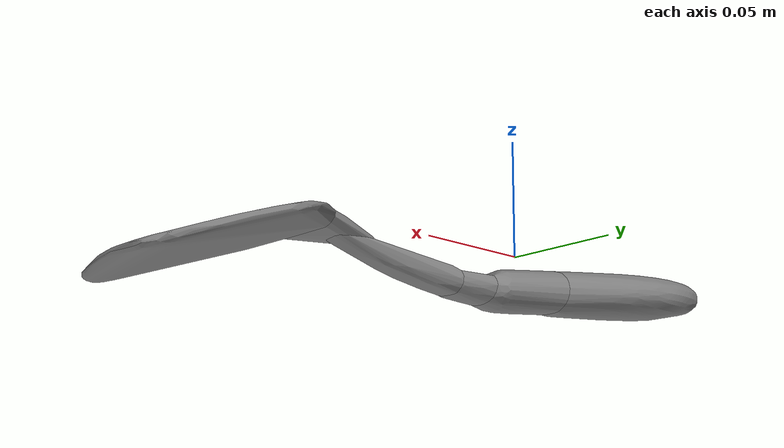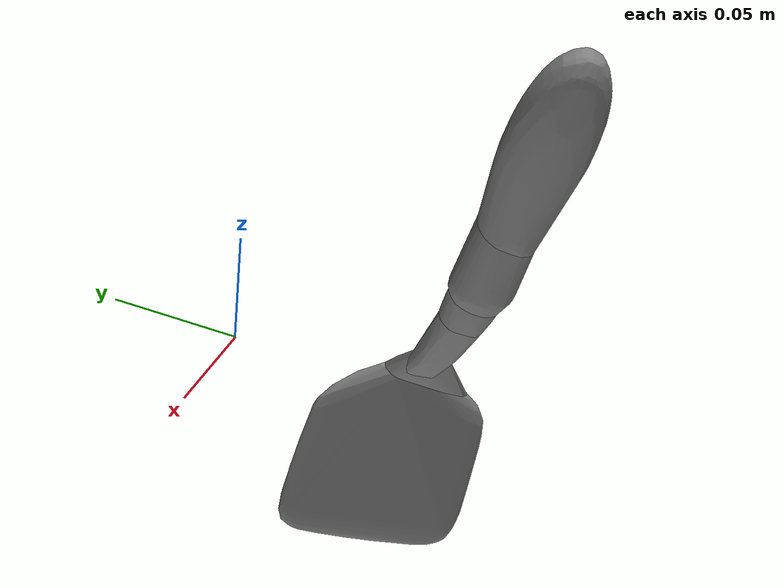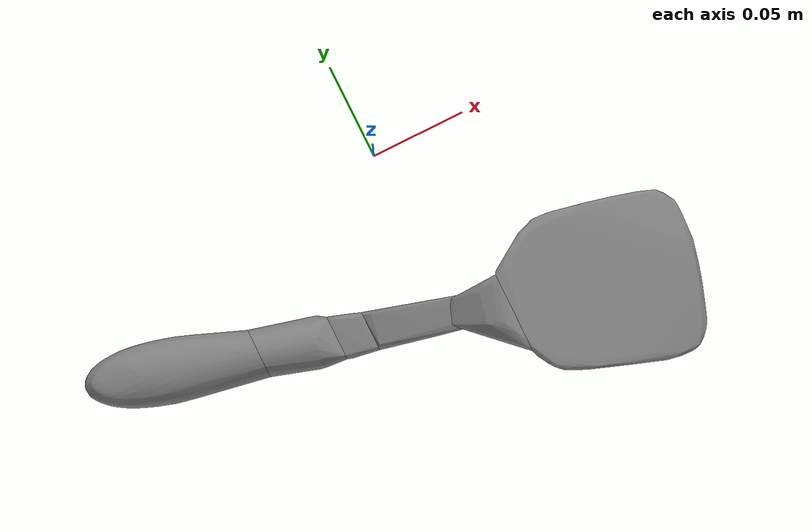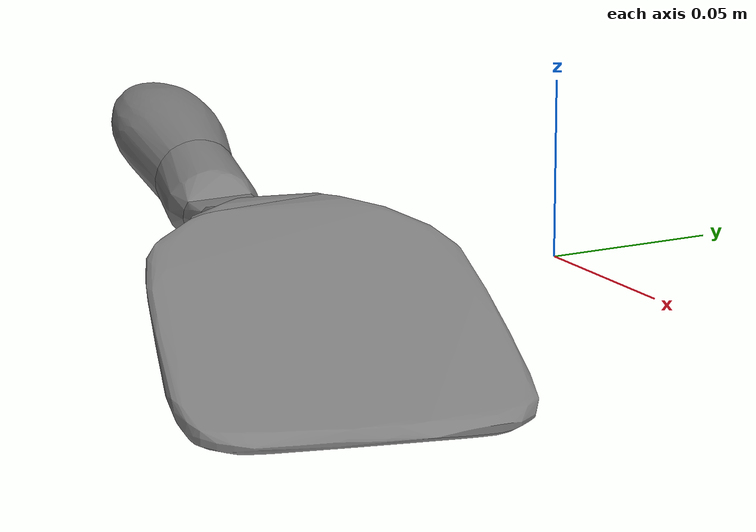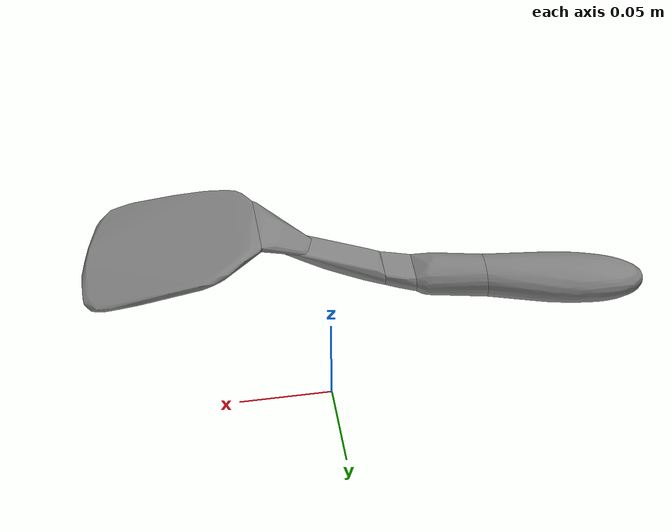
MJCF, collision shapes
<?xml version='1.0' encoding='utf-8'?>
<mujoco model="033_spatula"><asset><mesh name="visual" file="../raw/033_spatula/google_16k/nontextured.stl" /><mesh name="collision_0" file="../processed/033_spatula/collision_0.stl" /><mesh name="collision_1" file="../processed/033_spatula/collision_1.stl" /><mesh name="collision_2" file="../processed/033_spatula/collision_2.stl" /><mesh name="collision_3" file="../processed/033_spatula/collision_3.stl" /><mesh name="collision_4" file="../processed/033_spatula/collision_4.stl" /><mesh name="collision_5" file="../processed/033_spatula/collision_5.stl" /></asset><worldbody><body><body name="object"><geom name="visual_geom" type="mesh" mesh="visual" group="1" conaffinity="0" contype="0" mass="0.0" rgba="0.75 0.6 0.4 1" /><geom name="collision_geom_0" type="mesh" mesh="collision_0" group="0" density="500" friction="1 0.005 0.0001" /><geom name="collision_geom_1" type="mesh" mesh="collision_1" group="0" density="500" friction="1 0.005 0.0001" /><geom name="collision_geom_2" type="mesh" mesh="collision_2" group="0" density="500" friction="1 0.005 0.0001" /><geom name="collision_geom_3" type="mesh" mesh="collision_3" group="0" density="500" friction="1 0.005 0.0001" /><geom name="collision_geom_4" type="mesh" mesh="collision_4" group="0" density="500" friction="1 0.005 0.0001" /><geom name="collision_geom_5" type="mesh" mesh="collision_5" group="0" density="500" friction="1 0.005 0.0001" /></body><site name="bottom_site" pos="0 0 -0.0165" size="0.005" rgba="0 0 0 0" /><site name="top_site" pos="0 0 0.0165" size="0.005" rgba="0 0 0 0" /><site name="horizontal_radius_site" pos="0.1528 0 0" size="0.005" rgba="0 0 0 0" /></body></worldbody></mujoco>
